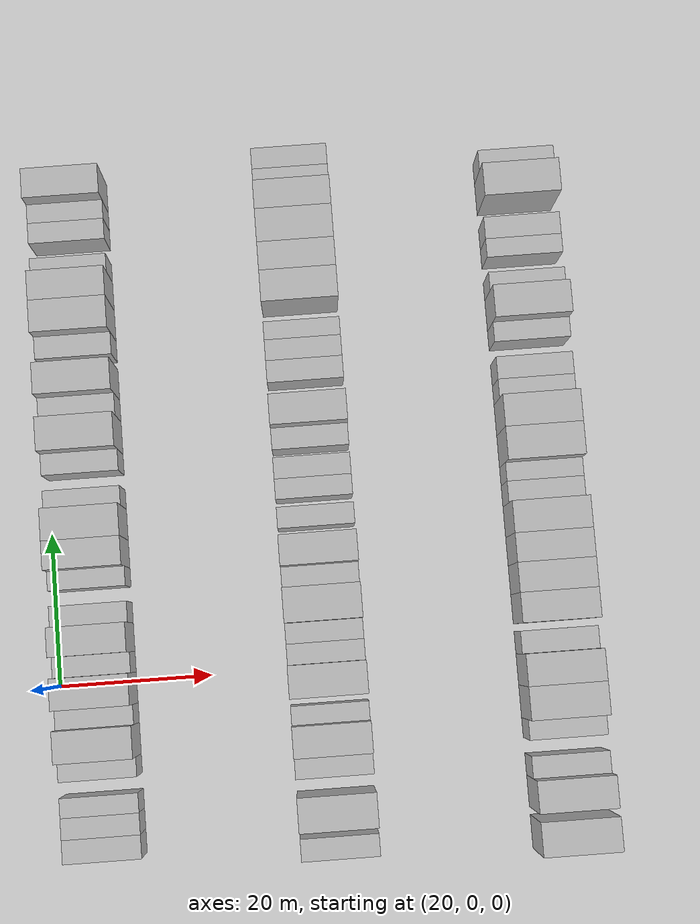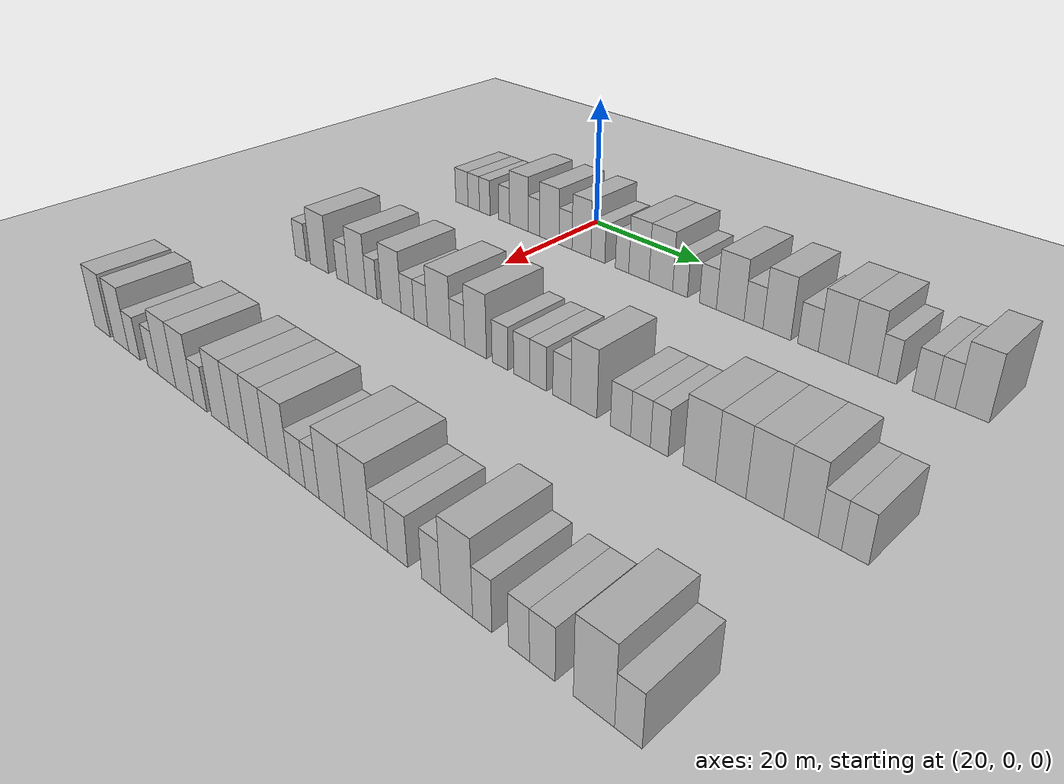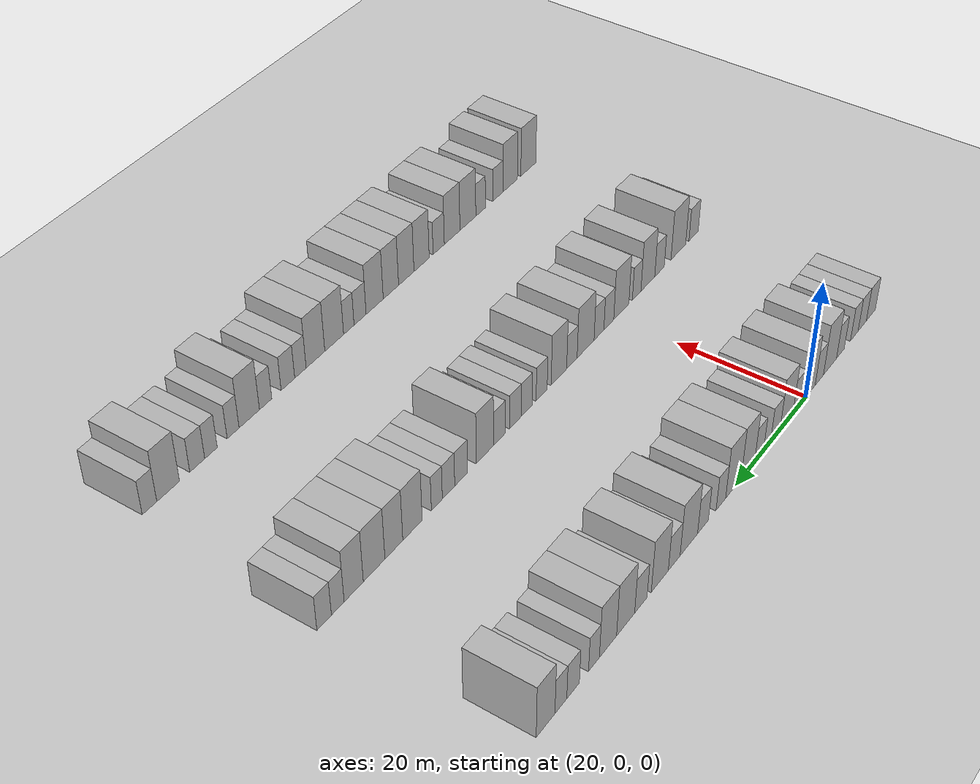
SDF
<sdf version="1.6">
 <world name="default">
  <include><name>ground_plane_1</name><uri>model://HANNAS_ground_plane</uri></include>
  <model name="building_111">
   <static>1</static>
   <pose>25.0000 -20.6103 0 0.000000 0.000000 0.000000</pose>
   <link name="link">
    <pose>0 0 3.00 0 0 0</pose>
    <collision name="collision"><geometry><box><size>10.0000 2.9997 6.0000</size></box></geometry></collision>
    <visual name="visual">
     <cast_shadows>0</cast_shadows>
     <geometry><box><size>10.0000 2.9997 6.0000</size></box></geometry>
     <material>
      <script>
       <uri>model://HANNAS_wall/materials/scripts</uri>
       <uri>model://HANNAS_wall/materials/textures</uri>
       <name>vrc/HANNAS_wall</name>
      </script>
     </material>
    </visual>
   </link>
  </model>
  <model name="building_112">
   <static>1</static>
   <pose>25.0000 -17.7527 0 0.000000 0.000000 0.000000</pose>
   <link name="link">
    <pose>0 0 3.00 0 0 0</pose>
    <collision name="collision"><geometry><box><size>10.0000 2.7156 6.0000</size></box></geometry></collision>
    <visual name="visual">
     <cast_shadows>0</cast_shadows>
     <geometry><box><size>10.0000 2.7156 6.0000</size></box></geometry>
     <material>
      <script>
       <uri>model://HANNAS_wall/materials/scripts</uri>
       <uri>model://HANNAS_wall/materials/textures</uri>
       <name>vrc/HANNAS_wall</name>
      </script>
     </material>
    </visual>
   </link>
  </model>
  <model name="building_113">
   <static>1</static>
   <pose>25.0000 -15.1498 0 0.000000 0.000000 0.000000</pose>
   <link name="link">
    <pose>0 0 3.00 0 0 0</pose>
    <collision name="collision"><geometry><box><size>10.0000 2.4902 6.0000</size></box></geometry></collision>
    <visual name="visual">
     <cast_shadows>0</cast_shadows>
     <geometry><box><size>10.0000 2.4902 6.0000</size></box></geometry>
     <material>
      <script>
       <uri>model://HANNAS_wall/materials/scripts</uri>
       <uri>model://HANNAS_wall/materials/textures</uri>
       <name>vrc/HANNAS_wall</name>
      </script>
     </material>
    </visual>
   </link>
  </model>
  <model name="building_114">
   <static>1</static>
   <pose>25.0000 -10.6758 0 0.000000 0.000000 0.000000</pose>
   <link name="link">
    <pose>0 0 3.00 0 0 0</pose>
    <collision name="collision"><geometry><box><size>10.0000 2.4577 6.0000</size></box></geometry></collision>
    <visual name="visual">
     <cast_shadows>0</cast_shadows>
     <geometry><box><size>10.0000 2.4577 6.0000</size></box></geometry>
     <material>
      <script>
       <uri>model://HANNAS_wall/materials/scripts</uri>
       <uri>model://HANNAS_wall/materials/textures</uri>
       <name>vrc/HANNAS_wall</name>
      </script>
     </material>
    </visual>
   </link>
  </model>
  <model name="building_115">
   <static>1</static>
   <pose>25.0000 -7.4059 0 0.000000 0.000000 0.000000</pose>
   <link name="link">
    <pose>0 0 4.50 0 0 0</pose>
    <collision name="collision"><geometry><box><size>10.0000 4.0821 9.0000</size></box></geometry></collision>
    <visual name="visual">
     <cast_shadows>0</cast_shadows>
     <geometry><box><size>10.0000 4.0821 9.0000</size></box></geometry>
     <material>
      <script>
       <uri>model://HANNAS_wall/materials/scripts</uri>
       <uri>model://HANNAS_wall/materials/textures</uri>
       <name>vrc/HANNAS_wall</name>
      </script>
     </material>
    </visual>
   </link>
  </model>
  <model name="building_116">
   <static>1</static>
   <pose>25.0000 -4.0964 0 0.000000 0.000000 0.000000</pose>
   <link name="link">
    <pose>0 0 3.00 0 0 0</pose>
    <collision name="collision"><geometry><box><size>10.0000 2.5369 6.0000</size></box></geometry></collision>
    <visual name="visual">
     <cast_shadows>0</cast_shadows>
     <geometry><box><size>10.0000 2.5369 6.0000</size></box></geometry>
     <material>
      <script>
       <uri>model://HANNAS_wall/materials/scripts</uri>
       <uri>model://HANNAS_wall/materials/textures</uri>
       <name>vrc/HANNAS_wall</name>
      </script>
     </material>
    </visual>
   </link>
  </model>
  <model name="building_117">
   <static>1</static>
   <pose>25.0000 -0.8176 0 0.000000 0.000000 0.000000</pose>
   <link name="link">
    <pose>0 0 4.50 0 0 0</pose>
    <collision name="collision"><geometry><box><size>10.0000 4.0207 9.0000</size></box></geometry></collision>
    <visual name="visual">
     <cast_shadows>0</cast_shadows>
     <geometry><box><size>10.0000 4.0207 9.0000</size></box></geometry>
     <material>
      <script>
       <uri>model://HANNAS_wall/materials/scripts</uri>
       <uri>model://HANNAS_wall/materials/textures</uri>
       <name>vrc/HANNAS_wall</name>
      </script>
     </material>
    </visual>
   </link>
  </model>
  <model name="building_118">
   <static>1</static>
   <pose>25.0000 2.5289 0 0.000000 0.000000 0.000000</pose>
   <link name="link">
    <pose>0 0 3.00 0 0 0</pose>
    <collision name="collision"><geometry><box><size>10.0000 2.6723 6.0000</size></box></geometry></collision>
    <visual name="visual">
     <cast_shadows>0</cast_shadows>
     <geometry><box><size>10.0000 2.6723 6.0000</size></box></geometry>
     <material>
      <script>
       <uri>model://HANNAS_wall/materials/scripts</uri>
       <uri>model://HANNAS_wall/materials/textures</uri>
       <name>vrc/HANNAS_wall</name>
      </script>
     </material>
    </visual>
   </link>
  </model>
  <model name="building_119">
   <static>1</static>
   <pose>25.0000 5.7479 0 0.000000 0.000000 0.000000</pose>
   <link name="link">
    <pose>0 0 4.50 0 0 0</pose>
    <collision name="collision"><geometry><box><size>10.0000 3.7658 9.0000</size></box></geometry></collision>
    <visual name="visual">
     <cast_shadows>0</cast_shadows>
     <geometry><box><size>10.0000 3.7658 9.0000</size></box></geometry>
     <material>
      <script>
       <uri>model://HANNAS_wall/materials/scripts</uri>
       <uri>model://HANNAS_wall/materials/textures</uri>
       <name>vrc/HANNAS_wall</name>
      </script>
     </material>
    </visual>
   </link>
  </model>
  <model name="building_120">
   <static>1</static>
   <pose>25.0000 8.9909 0 0.000000 0.000000 0.000000</pose>
   <link name="link">
    <pose>0 0 3.00 0 0 0</pose>
    <collision name="collision"><geometry><box><size>10.0000 2.7201 6.0000</size></box></geometry></collision>
    <visual name="visual">
     <cast_shadows>0</cast_shadows>
     <geometry><box><size>10.0000 2.7201 6.0000</size></box></geometry>
     <material>
      <script>
       <uri>model://HANNAS_wall/materials/scripts</uri>
       <uri>model://HANNAS_wall/materials/textures</uri>
       <name>vrc/HANNAS_wall</name>
      </script>
     </material>
    </visual>
   </link>
  </model>
  <model name="building_121">
   <static>1</static>
   <pose>25.0000 13.6086 0 0.000000 0.000000 0.000000</pose>
   <link name="link">
    <pose>0 0 3.00 0 0 0</pose>
    <collision name="collision"><geometry><box><size>10.0000 2.5153 6.0000</size></box></geometry></collision>
    <visual name="visual">
     <cast_shadows>0</cast_shadows>
     <geometry><box><size>10.0000 2.5153 6.0000</size></box></geometry>
     <material>
      <script>
       <uri>model://HANNAS_wall/materials/scripts</uri>
       <uri>model://HANNAS_wall/materials/textures</uri>
       <name>vrc/HANNAS_wall</name>
      </script>
     </material>
    </visual>
   </link>
  </model>
  <model name="building_122">
   <static>1</static>
   <pose>25.0000 16.7250 0 0.000000 0.000000 0.000000</pose>
   <link name="link">
    <pose>0 0 4.50 0 0 0</pose>
    <collision name="collision"><geometry><box><size>10.0000 3.7175 9.0000</size></box></geometry></collision>
    <visual name="visual">
     <cast_shadows>0</cast_shadows>
     <geometry><box><size>10.0000 3.7175 9.0000</size></box></geometry>
     <material>
      <script>
       <uri>model://HANNAS_wall/materials/scripts</uri>
       <uri>model://HANNAS_wall/materials/textures</uri>
       <name>vrc/HANNAS_wall</name>
      </script>
     </material>
    </visual>
   </link>
  </model>
  <model name="building_123">
   <static>1</static>
   <pose>25.0000 20.6630 0 0.000000 0.000000 0.000000</pose>
   <link name="link">
    <pose>0 0 4.50 0 0 0</pose>
    <collision name="collision"><geometry><box><size>10.0000 4.1586 9.0000</size></box></geometry></collision>
    <visual name="visual">
     <cast_shadows>0</cast_shadows>
     <geometry><box><size>10.0000 4.1586 9.0000</size></box></geometry>
     <material>
      <script>
       <uri>model://HANNAS_wall/materials/scripts</uri>
       <uri>model://HANNAS_wall/materials/textures</uri>
       <name>vrc/HANNAS_wall</name>
      </script>
     </material>
    </visual>
   </link>
  </model>
  <model name="building_124">
   <static>1</static>
   <pose>25.0000 24.0163 0 0.000000 0.000000 0.000000</pose>
   <link name="link">
    <pose>0 0 3.00 0 0 0</pose>
    <collision name="collision"><geometry><box><size>10.0000 2.5480 6.0000</size></box></geometry></collision>
    <visual name="visual">
     <cast_shadows>0</cast_shadows>
     <geometry><box><size>10.0000 2.5480 6.0000</size></box></geometry>
     <material>
      <script>
       <uri>model://HANNAS_wall/materials/scripts</uri>
       <uri>model://HANNAS_wall/materials/textures</uri>
       <name>vrc/HANNAS_wall</name>
      </script>
     </material>
    </visual>
   </link>
  </model>
  <model name="building_125">
   <static>1</static>
   <pose>25.0000 28.6931 0 0.000000 0.000000 0.000000</pose>
   <link name="link">
    <pose>0 0 3.00 0 0 0</pose>
    <collision name="collision"><geometry><box><size>10.0000 2.8056 6.0000</size></box></geometry></collision>
    <visual name="visual">
     <cast_shadows>0</cast_shadows>
     <geometry><box><size>10.0000 2.8056 6.0000</size></box></geometry>
     <material>
      <script>
       <uri>model://HANNAS_wall/materials/scripts</uri>
       <uri>model://HANNAS_wall/materials/textures</uri>
       <name>vrc/HANNAS_wall</name>
      </script>
     </material>
    </visual>
   </link>
  </model>
  <model name="building_126">
   <static>1</static>
   <pose>25.0000 32.3089 0 0.000000 0.000000 0.000000</pose>
   <link name="link">
    <pose>0 0 4.50 0 0 0</pose>
    <collision name="collision"><geometry><box><size>10.0000 4.4259 9.0000</size></box></geometry></collision>
    <visual name="visual">
     <cast_shadows>0</cast_shadows>
     <geometry><box><size>10.0000 4.4259 9.0000</size></box></geometry>
     <material>
      <script>
       <uri>model://HANNAS_wall/materials/scripts</uri>
       <uri>model://HANNAS_wall/materials/textures</uri>
       <name>vrc/HANNAS_wall</name>
      </script>
     </material>
    </visual>
   </link>
  </model>
  <model name="building_127">
   <static>1</static>
   <pose>25.0000 35.9844 0 0.000000 0.000000 0.000000</pose>
   <link name="link">
    <pose>0 0 3.00 0 0 0</pose>
    <collision name="collision"><geometry><box><size>10.0000 2.9252 6.0000</size></box></geometry></collision>
    <visual name="visual">
     <cast_shadows>0</cast_shadows>
     <geometry><box><size>10.0000 2.9252 6.0000</size></box></geometry>
     <material>
      <script>
       <uri>model://HANNAS_wall/materials/scripts</uri>
       <uri>model://HANNAS_wall/materials/textures</uri>
       <name>vrc/HANNAS_wall</name>
      </script>
     </material>
    </visual>
   </link>
  </model>
  <model name="building_128">
   <static>1</static>
   <pose>25.0000 39.5188 0 0.000000 0.000000 0.000000</pose>
   <link name="link">
    <pose>0 0 4.50 0 0 0</pose>
    <collision name="collision"><geometry><box><size>10.0000 4.1435 9.0000</size></box></geometry></collision>
    <visual name="visual">
     <cast_shadows>0</cast_shadows>
     <geometry><box><size>10.0000 4.1435 9.0000</size></box></geometry>
     <material>
      <script>
       <uri>model://HANNAS_wall/materials/scripts</uri>
       <uri>model://HANNAS_wall/materials/textures</uri>
       <name>vrc/HANNAS_wall</name>
      </script>
     </material>
    </visual>
   </link>
  </model>
  <model name="building_129">
   <static>1</static>
   <pose>25.0000 44.0666 0 0.000000 0.000000 0.000000</pose>
   <link name="link">
    <pose>0 0 3.00 0 0 0</pose>
    <collision name="collision"><geometry><box><size>10.0000 2.9522 6.0000</size></box></geometry></collision>
    <visual name="visual">
     <cast_shadows>0</cast_shadows>
     <geometry><box><size>10.0000 2.9522 6.0000</size></box></geometry>
     <material>
      <script>
       <uri>model://HANNAS_wall/materials/scripts</uri>
       <uri>model://HANNAS_wall/materials/textures</uri>
       <name>vrc/HANNAS_wall</name>
      </script>
     </material>
    </visual>
   </link>
  </model>
  <model name="building_130">
   <static>1</static>
   <pose>25.0000 47.6422 0 0.000000 0.000000 0.000000</pose>
   <link name="link">
    <pose>0 0 4.50 0 0 0</pose>
    <collision name="collision"><geometry><box><size>10.0000 4.1989 9.0000</size></box></geometry></collision>
    <visual name="visual">
     <cast_shadows>0</cast_shadows>
     <geometry><box><size>10.0000 4.1989 9.0000</size></box></geometry>
     <material>
      <script>
       <uri>model://HANNAS_wall/materials/scripts</uri>
       <uri>model://HANNAS_wall/materials/textures</uri>
       <name>vrc/HANNAS_wall</name>
      </script>
     </material>
    </visual>
   </link>
  </model>
  <model name="building_131">
   <static>1</static>
   <pose>25.0000 51.6867 0 0.000000 0.000000 0.000000</pose>
   <link name="link">
    <pose>0 0 4.50 0 0 0</pose>
    <collision name="collision"><geometry><box><size>10.0000 3.8899 9.0000</size></box></geometry></collision>
    <visual name="visual">
     <cast_shadows>0</cast_shadows>
     <geometry><box><size>10.0000 3.8899 9.0000</size></box></geometry>
     <material>
      <script>
       <uri>model://HANNAS_wall/materials/scripts</uri>
       <uri>model://HANNAS_wall/materials/textures</uri>
       <name>vrc/HANNAS_wall</name>
      </script>
     </material>
    </visual>
   </link>
  </model>
  <model name="building_132">
   <static>1</static>
   <pose>25.0000 54.8414 0 0.000000 0.000000 0.000000</pose>
   <link name="link">
    <pose>0 0 3.00 0 0 0</pose>
    <collision name="collision"><geometry><box><size>10.0000 2.4197 6.0000</size></box></geometry></collision>
    <visual name="visual">
     <cast_shadows>0</cast_shadows>
     <geometry><box><size>10.0000 2.4197 6.0000</size></box></geometry>
     <material>
      <script>
       <uri>model://HANNAS_wall/materials/scripts</uri>
       <uri>model://HANNAS_wall/materials/textures</uri>
       <name>vrc/HANNAS_wall</name>
      </script>
     </material>
    </visual>
   </link>
  </model>
  <model name="building_133">
   <static>1</static>
   <pose>25.0000 59.4169 0 0.000000 0.000000 0.000000</pose>
   <link name="link">
    <pose>0 0 3.00 0 0 0</pose>
    <collision name="collision"><geometry><box><size>10.0000 2.7312 6.0000</size></box></geometry></collision>
    <visual name="visual">
     <cast_shadows>0</cast_shadows>
     <geometry><box><size>10.0000 2.7312 6.0000</size></box></geometry>
     <material>
      <script>
       <uri>model://HANNAS_wall/materials/scripts</uri>
       <uri>model://HANNAS_wall/materials/textures</uri>
       <name>vrc/HANNAS_wall</name>
      </script>
     </material>
    </visual>
   </link>
  </model>
  <model name="building_134">
   <static>1</static>
   <pose>25.0000 62.0471 0 0.000000 0.000000 0.000000</pose>
   <link name="link">
    <pose>0 0 3.00 0 0 0</pose>
    <collision name="collision"><geometry><box><size>10.0000 2.5291 6.0000</size></box></geometry></collision>
    <visual name="visual">
     <cast_shadows>0</cast_shadows>
     <geometry><box><size>10.0000 2.5291 6.0000</size></box></geometry>
     <material>
      <script>
       <uri>model://HANNAS_wall/materials/scripts</uri>
       <uri>model://HANNAS_wall/materials/textures</uri>
       <name>vrc/HANNAS_wall</name>
      </script>
     </material>
    </visual>
   </link>
  </model>
  <model name="building_135">
   <static>1</static>
   <pose>25.0000 65.2681 0 0.000000 0.000000 0.000000</pose>
   <link name="link">
    <pose>0 0 4.50 0 0 0</pose>
    <collision name="collision"><geometry><box><size>10.0000 3.9130 9.0000</size></box></geometry></collision>
    <visual name="visual">
     <cast_shadows>0</cast_shadows>
     <geometry><box><size>10.0000 3.9130 9.0000</size></box></geometry>
     <material>
      <script>
       <uri>model://HANNAS_wall/materials/scripts</uri>
       <uri>model://HANNAS_wall/materials/textures</uri>
       <name>vrc/HANNAS_wall</name>
      </script>
     </material>
    </visual>
   </link>
  </model>
  <model name="building_351">
   <static>1</static>
   <pose>55.0000 -22.5937 0 0.000000 0.000000 0.000000</pose>
   <link name="link">
    <pose>0 0 3.00 0 0 0</pose>
    <collision name="collision"><geometry><box><size>10.0000 2.8374 6.0000</size></box></geometry></collision>
    <visual name="visual">
     <cast_shadows>0</cast_shadows>
     <geometry><box><size>10.0000 2.8374 6.0000</size></box></geometry>
     <material>
      <script>
       <uri>model://HANNAS_wall/materials/scripts</uri>
       <uri>model://HANNAS_wall/materials/textures</uri>
       <name>vrc/HANNAS_wall</name>
      </script>
     </material>
    </visual>
   </link>
  </model>
  <model name="building_352">
   <static>1</static>
   <pose>55.0000 -17.9702 0 0.000000 0.000000 0.000000</pose>
   <link name="link">
    <pose>0 0 4.50 0 0 0</pose>
    <collision name="collision"><geometry><box><size>10.0000 4.4096 9.0000</size></box></geometry></collision>
    <visual name="visual">
     <cast_shadows>0</cast_shadows>
     <geometry><box><size>10.0000 4.4096 9.0000</size></box></geometry>
     <material>
      <script>
       <uri>model://HANNAS_wall/materials/scripts</uri>
       <uri>model://HANNAS_wall/materials/textures</uri>
       <name>vrc/HANNAS_wall</name>
      </script>
     </material>
    </visual>
   </link>
  </model>
  <model name="building_353">
   <static>1</static>
   <pose>55.0000 -12.3756 0 0.000000 0.000000 0.000000</pose>
   <link name="link">
    <pose>0 0 3.00 0 0 0</pose>
    <collision name="collision"><geometry><box><size>10.0000 2.7796 6.0000</size></box></geometry></collision>
    <visual name="visual">
     <cast_shadows>0</cast_shadows>
     <geometry><box><size>10.0000 2.7796 6.0000</size></box></geometry>
     <material>
      <script>
       <uri>model://HANNAS_wall/materials/scripts</uri>
       <uri>model://HANNAS_wall/materials/textures</uri>
       <name>vrc/HANNAS_wall</name>
      </script>
     </material>
    </visual>
   </link>
  </model>
  <model name="building_354">
   <static>1</static>
   <pose>55.0000 -8.9920 0 0.000000 0.000000 0.000000</pose>
   <link name="link">
    <pose>0 0 4.50 0 0 0</pose>
    <collision name="collision"><geometry><box><size>10.0000 3.9876 9.0000</size></box></geometry></collision>
    <visual name="visual">
     <cast_shadows>0</cast_shadows>
     <geometry><box><size>10.0000 3.9876 9.0000</size></box></geometry>
     <material>
      <script>
       <uri>model://HANNAS_wall/materials/scripts</uri>
       <uri>model://HANNAS_wall/materials/textures</uri>
       <name>vrc/HANNAS_wall</name>
      </script>
     </material>
    </visual>
   </link>
  </model>
  <model name="building_355">
   <static>1</static>
   <pose>55.0000 -5.7828 0 0.000000 0.000000 0.000000</pose>
   <link name="link">
    <pose>0 0 3.00 0 0 0</pose>
    <collision name="collision"><geometry><box><size>10.0000 2.4306 6.0000</size></box></geometry></collision>
    <visual name="visual">
     <cast_shadows>0</cast_shadows>
     <geometry><box><size>10.0000 2.4306 6.0000</size></box></geometry>
     <material>
      <script>
       <uri>model://HANNAS_wall/materials/scripts</uri>
       <uri>model://HANNAS_wall/materials/textures</uri>
       <name>vrc/HANNAS_wall</name>
      </script>
     </material>
    </visual>
   </link>
  </model>
  <model name="building_356">
   <static>1</static>
   <pose>55.0000 -1.4709 0 0.000000 0.000000 0.000000</pose>
   <link name="link">
    <pose>0 0 4.50 0 0 0</pose>
    <collision name="collision"><geometry><box><size>10.0000 4.1933 9.0000</size></box></geometry></collision>
    <visual name="visual">
     <cast_shadows>0</cast_shadows>
     <geometry><box><size>10.0000 4.1933 9.0000</size></box></geometry>
     <material>
      <script>
       <uri>model://HANNAS_wall/materials/scripts</uri>
       <uri>model://HANNAS_wall/materials/textures</uri>
       <name>vrc/HANNAS_wall</name>
      </script>
     </material>
    </visual>
   </link>
  </model>
  <model name="building_357">
   <static>1</static>
   <pose>55.0000 1.9734 0 0.000000 0.000000 0.000000</pose>
   <link name="link">
    <pose>0 0 3.00 0 0 0</pose>
    <collision name="collision"><geometry><box><size>10.0000 2.6951 6.0000</size></box></geometry></collision>
    <visual name="visual">
     <cast_shadows>0</cast_shadows>
     <geometry><box><size>10.0000 2.6951 6.0000</size></box></geometry>
     <material>
      <script>
       <uri>model://HANNAS_wall/materials/scripts</uri>
       <uri>model://HANNAS_wall/materials/textures</uri>
       <name>vrc/HANNAS_wall</name>
      </script>
     </material>
    </visual>
   </link>
  </model>
  <model name="building_358">
   <static>1</static>
   <pose>55.0000 4.6484 0 0.000000 0.000000 0.000000</pose>
   <link name="link">
    <pose>0 0 3.00 0 0 0</pose>
    <collision name="collision"><geometry><box><size>10.0000 2.6549 6.0000</size></box></geometry></collision>
    <visual name="visual">
     <cast_shadows>0</cast_shadows>
     <geometry><box><size>10.0000 2.6549 6.0000</size></box></geometry>
     <material>
      <script>
       <uri>model://HANNAS_wall/materials/scripts</uri>
       <uri>model://HANNAS_wall/materials/textures</uri>
       <name>vrc/HANNAS_wall</name>
      </script>
     </material>
    </visual>
   </link>
  </model>
  <model name="building_359">
   <static>1</static>
   <pose>55.0000 8.2243 0 0.000000 0.000000 0.000000</pose>
   <link name="link">
    <pose>0 0 4.50 0 0 0</pose>
    <collision name="collision"><geometry><box><size>10.0000 4.4969 9.0000</size></box></geometry></collision>
    <visual name="visual">
     <cast_shadows>0</cast_shadows>
     <geometry><box><size>10.0000 4.4969 9.0000</size></box></geometry>
     <material>
      <script>
       <uri>model://HANNAS_wall/materials/scripts</uri>
       <uri>model://HANNAS_wall/materials/textures</uri>
       <name>vrc/HANNAS_wall</name>
      </script>
     </material>
    </visual>
   </link>
  </model>
  <model name="building_360">
   <static>1</static>
   <pose>55.0000 11.8341 0 0.000000 0.000000 0.000000</pose>
   <link name="link">
    <pose>0 0 3.00 0 0 0</pose>
    <collision name="collision"><geometry><box><size>10.0000 2.7228 6.0000</size></box></geometry></collision>
    <visual name="visual">
     <cast_shadows>0</cast_shadows>
     <geometry><box><size>10.0000 2.7228 6.0000</size></box></geometry>
     <material>
      <script>
       <uri>model://HANNAS_wall/materials/scripts</uri>
       <uri>model://HANNAS_wall/materials/textures</uri>
       <name>vrc/HANNAS_wall</name>
      </script>
     </material>
    </visual>
   </link>
  </model>
  <model name="building_361">
   <static>1</static>
   <pose>55.0000 15.1858 0 0.000000 0.000000 0.000000</pose>
   <link name="link">
    <pose>0 0 4.50 0 0 0</pose>
    <collision name="collision"><geometry><box><size>10.0000 3.9806 9.0000</size></box></geometry></collision>
    <visual name="visual">
     <cast_shadows>0</cast_shadows>
     <geometry><box><size>10.0000 3.9806 9.0000</size></box></geometry>
     <material>
      <script>
       <uri>model://HANNAS_wall/materials/scripts</uri>
       <uri>model://HANNAS_wall/materials/textures</uri>
       <name>vrc/HANNAS_wall</name>
      </script>
     </material>
    </visual>
   </link>
  </model>
  <model name="building_362">
   <static>1</static>
   <pose>55.0000 19.5597 0 0.000000 0.000000 0.000000</pose>
   <link name="link">
    <pose>0 0 3.00 0 0 0</pose>
    <collision name="collision"><geometry><box><size>10.0000 2.7673 6.0000</size></box></geometry></collision>
    <visual name="visual">
     <cast_shadows>0</cast_shadows>
     <geometry><box><size>10.0000 2.7673 6.0000</size></box></geometry>
     <material>
      <script>
       <uri>model://HANNAS_wall/materials/scripts</uri>
       <uri>model://HANNAS_wall/materials/textures</uri>
       <name>vrc/HANNAS_wall</name>
      </script>
     </material>
    </visual>
   </link>
  </model>
  <model name="building_363">
   <static>1</static>
   <pose>55.0000 23.2791 0 0.000000 0.000000 0.000000</pose>
   <link name="link">
    <pose>0 0 3.00 0 0 0</pose>
    <collision name="collision"><geometry><box><size>10.0000 2.6715 6.0000</size></box></geometry></collision>
    <visual name="visual">
     <cast_shadows>0</cast_shadows>
     <geometry><box><size>10.0000 2.6715 6.0000</size></box></geometry>
     <material>
      <script>
       <uri>model://HANNAS_wall/materials/scripts</uri>
       <uri>model://HANNAS_wall/materials/textures</uri>
       <name>vrc/HANNAS_wall</name>
      </script>
     </material>
    </visual>
   </link>
  </model>
  <model name="building_364">
   <static>1</static>
   <pose>55.0000 26.0213 0 0.000000 0.000000 0.000000</pose>
   <link name="link">
    <pose>0 0 3.00 0 0 0</pose>
    <collision name="collision"><geometry><box><size>10.0000 2.8129 6.0000</size></box></geometry></collision>
    <visual name="visual">
     <cast_shadows>0</cast_shadows>
     <geometry><box><size>10.0000 2.8129 6.0000</size></box></geometry>
     <material>
      <script>
       <uri>model://HANNAS_wall/materials/scripts</uri>
       <uri>model://HANNAS_wall/materials/textures</uri>
       <name>vrc/HANNAS_wall</name>
      </script>
     </material>
    </visual>
   </link>
  </model>
  <model name="building_365">
   <static>1</static>
   <pose>55.0000 29.8499 0 0.000000 0.000000 0.000000</pose>
   <link name="link">
    <pose>0 0 3.00 0 0 0</pose>
    <collision name="collision"><geometry><box><size>10.0000 2.8444 6.0000</size></box></geometry></collision>
    <visual name="visual">
     <cast_shadows>0</cast_shadows>
     <geometry><box><size>10.0000 2.8444 6.0000</size></box></geometry>
     <material>
      <script>
       <uri>model://HANNAS_wall/materials/scripts</uri>
       <uri>model://HANNAS_wall/materials/textures</uri>
       <name>vrc/HANNAS_wall</name>
      </script>
     </material>
    </visual>
   </link>
  </model>
  <model name="building_366">
   <static>1</static>
   <pose>55.0000 33.2671 0 0.000000 0.000000 0.000000</pose>
   <link name="link">
    <pose>0 0 4.50 0 0 0</pose>
    <collision name="collision"><geometry><box><size>10.0000 3.9901 9.0000</size></box></geometry></collision>
    <visual name="visual">
     <cast_shadows>0</cast_shadows>
     <geometry><box><size>10.0000 3.9901 9.0000</size></box></geometry>
     <material>
      <script>
       <uri>model://HANNAS_wall/materials/scripts</uri>
       <uri>model://HANNAS_wall/materials/textures</uri>
       <name>vrc/HANNAS_wall</name>
      </script>
     </material>
    </visual>
   </link>
  </model>
  <model name="building_367">
   <static>1</static>
   <pose>55.0000 38.7201 0 0.000000 0.000000 0.000000</pose>
   <link name="link">
    <pose>0 0 3.00 0 0 0</pose>
    <collision name="collision"><geometry><box><size>10.0000 2.9158 6.0000</size></box></geometry></collision>
    <visual name="visual">
     <cast_shadows>0</cast_shadows>
     <geometry><box><size>10.0000 2.9158 6.0000</size></box></geometry>
     <material>
      <script>
       <uri>model://HANNAS_wall/materials/scripts</uri>
       <uri>model://HANNAS_wall/materials/textures</uri>
       <name>vrc/HANNAS_wall</name>
      </script>
     </material>
    </visual>
   </link>
  </model>
  <model name="building_368">
   <static>1</static>
   <pose>55.0000 41.5603 0 0.000000 0.000000 0.000000</pose>
   <link name="link">
    <pose>0 0 3.00 0 0 0</pose>
    <collision name="collision"><geometry><box><size>10.0000 2.7646 6.0000</size></box></geometry></collision>
    <visual name="visual">
     <cast_shadows>0</cast_shadows>
     <geometry><box><size>10.0000 2.7646 6.0000</size></box></geometry>
     <material>
      <script>
       <uri>model://HANNAS_wall/materials/scripts</uri>
       <uri>model://HANNAS_wall/materials/textures</uri>
       <name>vrc/HANNAS_wall</name>
      </script>
     </material>
    </visual>
   </link>
  </model>
  <model name="building_369">
   <static>1</static>
   <pose>55.0000 44.1464 0 0.000000 0.000000 0.000000</pose>
   <link name="link">
    <pose>0 0 3.00 0 0 0</pose>
    <collision name="collision"><geometry><box><size>10.0000 2.4075 6.0000</size></box></geometry></collision>
    <visual name="visual">
     <cast_shadows>0</cast_shadows>
     <geometry><box><size>10.0000 2.4075 6.0000</size></box></geometry>
     <material>
      <script>
       <uri>model://HANNAS_wall/materials/scripts</uri>
       <uri>model://HANNAS_wall/materials/textures</uri>
       <name>vrc/HANNAS_wall</name>
      </script>
     </material>
    </visual>
   </link>
  </model>
  <model name="building_370">
   <static>1</static>
   <pose>55.0000 49.4193 0 0.000000 0.000000 0.000000</pose>
   <link name="link">
    <pose>0 0 4.50 0 0 0</pose>
    <collision name="collision"><geometry><box><size>10.0000 4.1384 9.0000</size></box></geometry></collision>
    <visual name="visual">
     <cast_shadows>0</cast_shadows>
     <geometry><box><size>10.0000 4.1384 9.0000</size></box></geometry>
     <material>
      <script>
       <uri>model://HANNAS_wall/materials/scripts</uri>
       <uri>model://HANNAS_wall/materials/textures</uri>
       <name>vrc/HANNAS_wall</name>
      </script>
     </material>
    </visual>
   </link>
  </model>
  <model name="building_371">
   <static>1</static>
   <pose>55.0000 53.3589 0 0.000000 0.000000 0.000000</pose>
   <link name="link">
    <pose>0 0 4.50 0 0 0</pose>
    <collision name="collision"><geometry><box><size>10.0000 3.7408 9.0000</size></box></geometry></collision>
    <visual name="visual">
     <cast_shadows>0</cast_shadows>
     <geometry><box><size>10.0000 3.7408 9.0000</size></box></geometry>
     <material>
      <script>
       <uri>model://HANNAS_wall/materials/scripts</uri>
       <uri>model://HANNAS_wall/materials/textures</uri>
       <name>vrc/HANNAS_wall</name>
      </script>
     </material>
    </visual>
   </link>
  </model>
  <model name="building_372">
   <static>1</static>
   <pose>55.0000 57.4390 0 0.000000 0.000000 0.000000</pose>
   <link name="link">
    <pose>0 0 4.50 0 0 0</pose>
    <collision name="collision"><geometry><box><size>10.0000 4.4194 9.0000</size></box></geometry></collision>
    <visual name="visual">
     <cast_shadows>0</cast_shadows>
     <geometry><box><size>10.0000 4.4194 9.0000</size></box></geometry>
     <material>
      <script>
       <uri>model://HANNAS_wall/materials/scripts</uri>
       <uri>model://HANNAS_wall/materials/textures</uri>
       <name>vrc/HANNAS_wall</name>
      </script>
     </material>
    </visual>
   </link>
  </model>
  <model name="building_373">
   <static>1</static>
   <pose>55.0000 61.5638 0 0.000000 0.000000 0.000000</pose>
   <link name="link">
    <pose>0 0 4.50 0 0 0</pose>
    <collision name="collision"><geometry><box><size>10.0000 3.8303 9.0000</size></box></geometry></collision>
    <visual name="visual">
     <cast_shadows>0</cast_shadows>
     <geometry><box><size>10.0000 3.8303 9.0000</size></box></geometry>
     <material>
      <script>
       <uri>model://HANNAS_wall/materials/scripts</uri>
       <uri>model://HANNAS_wall/materials/textures</uri>
       <name>vrc/HANNAS_wall</name>
      </script>
     </material>
    </visual>
   </link>
  </model>
  <model name="building_374">
   <static>1</static>
   <pose>55.0000 64.7222 0 0.000000 0.000000 0.000000</pose>
   <link name="link">
    <pose>0 0 3.00 0 0 0</pose>
    <collision name="collision"><geometry><box><size>10.0000 2.4863 6.0000</size></box></geometry></collision>
    <visual name="visual">
     <cast_shadows>0</cast_shadows>
     <geometry><box><size>10.0000 2.4863 6.0000</size></box></geometry>
     <material>
      <script>
       <uri>model://HANNAS_wall/materials/scripts</uri>
       <uri>model://HANNAS_wall/materials/textures</uri>
       <name>vrc/HANNAS_wall</name>
      </script>
     </material>
    </visual>
   </link>
  </model>
  <model name="building_375">
   <static>1</static>
   <pose>55.0000 67.3729 0 0.000000 0.000000 0.000000</pose>
   <link name="link">
    <pose>0 0 3.00 0 0 0</pose>
    <collision name="collision"><geometry><box><size>10.0000 2.8152 6.0000</size></box></geometry></collision>
    <visual name="visual">
     <cast_shadows>0</cast_shadows>
     <geometry><box><size>10.0000 2.8152 6.0000</size></box></geometry>
     <material>
      <script>
       <uri>model://HANNAS_wall/materials/scripts</uri>
       <uri>model://HANNAS_wall/materials/textures</uri>
       <name>vrc/HANNAS_wall</name>
      </script>
     </material>
    </visual>
   </link>
  </model>
  <model name="building_580">
   <static>1</static>
   <pose>85.0000 -23.1302 0 0.000000 0.000000 0.000000</pose>
   <link name="link">
    <pose>0 0 4.50 0 0 0</pose>
    <collision name="collision"><geometry><box><size>10.0000 4.3270 9.0000</size></box></geometry></collision>
    <visual name="visual">
     <cast_shadows>0</cast_shadows>
     <geometry><box><size>10.0000 4.3270 9.0000</size></box></geometry>
     <material>
      <script>
       <uri>model://HANNAS_wall/materials/scripts</uri>
       <uri>model://HANNAS_wall/materials/textures</uri>
       <name>vrc/HANNAS_wall</name>
      </script>
     </material>
    </visual>
   </link>
  </model>
  <model name="building_581">
   <static>1</static>
   <pose>85.0000 -17.9281 0 0.000000 0.000000 0.000000</pose>
   <link name="link">
    <pose>0 0 4.50 0 0 0</pose>
    <collision name="collision"><geometry><box><size>10.0000 4.0773 9.0000</size></box></geometry></collision>
    <visual name="visual">
     <cast_shadows>0</cast_shadows>
     <geometry><box><size>10.0000 4.0773 9.0000</size></box></geometry>
     <material>
      <script>
       <uri>model://HANNAS_wall/materials/scripts</uri>
       <uri>model://HANNAS_wall/materials/textures</uri>
       <name>vrc/HANNAS_wall</name>
      </script>
     </material>
    </visual>
   </link>
  </model>
  <model name="building_582">
   <static>1</static>
   <pose>85.0000 -14.4764 0 0.000000 0.000000 0.000000</pose>
   <link name="link">
    <pose>0 0 3.00 0 0 0</pose>
    <collision name="collision"><geometry><box><size>10.0000 2.8260 6.0000</size></box></geometry></collision>
    <visual name="visual">
     <cast_shadows>0</cast_shadows>
     <geometry><box><size>10.0000 2.8260 6.0000</size></box></geometry>
     <material>
      <script>
       <uri>model://HANNAS_wall/materials/scripts</uri>
       <uri>model://HANNAS_wall/materials/textures</uri>
       <name>vrc/HANNAS_wall</name>
      </script>
     </material>
    </visual>
   </link>
  </model>
  <model name="building_583">
   <static>1</static>
   <pose>85.0000 -9.7641 0 0.000000 0.000000 0.000000</pose>
   <link name="link">
    <pose>0 0 3.00 0 0 0</pose>
    <collision name="collision"><geometry><box><size>10.0000 2.5988 6.0000</size></box></geometry></collision>
    <visual name="visual">
     <cast_shadows>0</cast_shadows>
     <geometry><box><size>10.0000 2.5988 6.0000</size></box></geometry>
     <material>
      <script>
       <uri>model://HANNAS_wall/materials/scripts</uri>
       <uri>model://HANNAS_wall/materials/textures</uri>
       <name>vrc/HANNAS_wall</name>
      </script>
     </material>
    </visual>
   </link>
  </model>
  <model name="building_584">
   <static>1</static>
   <pose>85.0000 -6.3399 0 0.000000 0.000000 0.000000</pose>
   <link name="link">
    <pose>0 0 4.50 0 0 0</pose>
    <collision name="collision"><geometry><box><size>10.0000 4.2496 9.0000</size></box></geometry></collision>
    <visual name="visual">
     <cast_shadows>0</cast_shadows>
     <geometry><box><size>10.0000 4.2496 9.0000</size></box></geometry>
     <material>
      <script>
       <uri>model://HANNAS_wall/materials/scripts</uri>
       <uri>model://HANNAS_wall/materials/textures</uri>
       <name>vrc/HANNAS_wall</name>
      </script>
     </material>
    </visual>
   </link>
  </model>
  <model name="building_585">
   <static>1</static>
   <pose>85.0000 -2.1703 0 0.000000 0.000000 0.000000</pose>
   <link name="link">
    <pose>0 0 4.50 0 0 0</pose>
    <collision name="collision"><geometry><box><size>10.0000 4.0896 9.0000</size></box></geometry></collision>
    <visual name="visual">
     <cast_shadows>0</cast_shadows>
     <geometry><box><size>10.0000 4.0896 9.0000</size></box></geometry>
     <material>
      <script>
       <uri>model://HANNAS_wall/materials/scripts</uri>
       <uri>model://HANNAS_wall/materials/textures</uri>
       <name>vrc/HANNAS_wall</name>
      </script>
     </material>
    </visual>
   </link>
  </model>
  <model name="building_586">
   <static>1</static>
   <pose>85.0000 1.3248 0 0.000000 0.000000 0.000000</pose>
   <link name="link">
    <pose>0 0 3.00 0 0 0</pose>
    <collision name="collision"><geometry><box><size>10.0000 2.9005 6.0000</size></box></geometry></collision>
    <visual name="visual">
     <cast_shadows>0</cast_shadows>
     <geometry><box><size>10.0000 2.9005 6.0000</size></box></geometry>
     <material>
      <script>
       <uri>model://HANNAS_wall/materials/scripts</uri>
       <uri>model://HANNAS_wall/materials/textures</uri>
       <name>vrc/HANNAS_wall</name>
      </script>
     </material>
    </visual>
   </link>
  </model>
  <model name="building_587">
   <static>1</static>
   <pose>85.0000 5.6967 0 0.000000 0.000000 0.000000</pose>
   <link name="link">
    <pose>0 0 4.50 0 0 0</pose>
    <collision name="collision"><geometry><box><size>10.0000 3.8432 9.0000</size></box></geometry></collision>
    <visual name="visual">
     <cast_shadows>0</cast_shadows>
     <geometry><box><size>10.0000 3.8432 9.0000</size></box></geometry>
     <material>
      <script>
       <uri>model://HANNAS_wall/materials/scripts</uri>
       <uri>model://HANNAS_wall/materials/textures</uri>
       <name>vrc/HANNAS_wall</name>
      </script>
     </material>
    </visual>
   </link>
  </model>
  <model name="building_588">
   <static>1</static>
   <pose>85.0000 9.5286 0 0.000000 0.000000 0.000000</pose>
   <link name="link">
    <pose>0 0 4.50 0 0 0</pose>
    <collision name="collision"><geometry><box><size>10.0000 3.8206 9.0000</size></box></geometry></collision>
    <visual name="visual">
     <cast_shadows>0</cast_shadows>
     <geometry><box><size>10.0000 3.8206 9.0000</size></box></geometry>
     <material>
      <script>
       <uri>model://HANNAS_wall/materials/scripts</uri>
       <uri>model://HANNAS_wall/materials/textures</uri>
       <name>vrc/HANNAS_wall</name>
      </script>
     </material>
    </visual>
   </link>
  </model>
  <model name="building_589">
   <static>1</static>
   <pose>85.0000 13.3107 0 0.000000 0.000000 0.000000</pose>
   <link name="link">
    <pose>0 0 4.50 0 0 0</pose>
    <collision name="collision"><geometry><box><size>10.0000 3.7436 9.0000</size></box></geometry></collision>
    <visual name="visual">
     <cast_shadows>0</cast_shadows>
     <geometry><box><size>10.0000 3.7436 9.0000</size></box></geometry>
     <material>
      <script>
       <uri>model://HANNAS_wall/materials/scripts</uri>
       <uri>model://HANNAS_wall/materials/textures</uri>
       <name>vrc/HANNAS_wall</name>
      </script>
     </material>
    </visual>
   </link>
  </model>
  <model name="building_590">
   <static>1</static>
   <pose>85.0000 17.2349 0 0.000000 0.000000 0.000000</pose>
   <link name="link">
    <pose>0 0 4.50 0 0 0</pose>
    <collision name="collision"><geometry><box><size>10.0000 4.1046 9.0000</size></box></geometry></collision>
    <visual name="visual">
     <cast_shadows>0</cast_shadows>
     <geometry><box><size>10.0000 4.1046 9.0000</size></box></geometry>
     <material>
      <script>
       <uri>model://HANNAS_wall/materials/scripts</uri>
       <uri>model://HANNAS_wall/materials/textures</uri>
       <name>vrc/HANNAS_wall</name>
      </script>
     </material>
    </visual>
   </link>
  </model>
  <model name="building_591">
   <static>1</static>
   <pose>85.0000 20.7031 0 0.000000 0.000000 0.000000</pose>
   <link name="link">
    <pose>0 0 3.00 0 0 0</pose>
    <collision name="collision"><geometry><box><size>10.0000 2.8319 6.0000</size></box></geometry></collision>
    <visual name="visual">
     <cast_shadows>0</cast_shadows>
     <geometry><box><size>10.0000 2.8319 6.0000</size></box></geometry>
     <material>
      <script>
       <uri>model://HANNAS_wall/materials/scripts</uri>
       <uri>model://HANNAS_wall/materials/textures</uri>
       <name>vrc/HANNAS_wall</name>
      </script>
     </material>
    </visual>
   </link>
  </model>
  <model name="building_592">
   <static>1</static>
   <pose>85.0000 23.3323 0 0.000000 0.000000 0.000000</pose>
   <link name="link">
    <pose>0 0 3.00 0 0 0</pose>
    <collision name="collision"><geometry><box><size>10.0000 2.4265 6.0000</size></box></geometry></collision>
    <visual name="visual">
     <cast_shadows>0</cast_shadows>
     <geometry><box><size>10.0000 2.4265 6.0000</size></box></geometry>
     <material>
      <script>
       <uri>model://HANNAS_wall/materials/scripts</uri>
       <uri>model://HANNAS_wall/materials/textures</uri>
       <name>vrc/HANNAS_wall</name>
      </script>
     </material>
    </visual>
   </link>
  </model>
  <model name="building_593">
   <static>1</static>
   <pose>85.0000 26.6913 0 0.000000 0.000000 0.000000</pose>
   <link name="link">
    <pose>0 0 4.50 0 0 0</pose>
    <collision name="collision"><geometry><box><size>10.0000 4.2914 9.0000</size></box></geometry></collision>
    <visual name="visual">
     <cast_shadows>0</cast_shadows>
     <geometry><box><size>10.0000 4.2914 9.0000</size></box></geometry>
     <material>
      <script>
       <uri>model://HANNAS_wall/materials/scripts</uri>
       <uri>model://HANNAS_wall/materials/textures</uri>
       <name>vrc/HANNAS_wall</name>
      </script>
     </material>
    </visual>
   </link>
  </model>
  <model name="building_594">
   <static>1</static>
   <pose>85.0000 30.9247 0 0.000000 0.000000 0.000000</pose>
   <link name="link">
    <pose>0 0 4.50 0 0 0</pose>
    <collision name="collision"><geometry><box><size>10.0000 4.1754 9.0000</size></box></geometry></collision>
    <visual name="visual">
     <cast_shadows>0</cast_shadows>
     <geometry><box><size>10.0000 4.1754 9.0000</size></box></geometry>
     <material>
      <script>
       <uri>model://HANNAS_wall/materials/scripts</uri>
       <uri>model://HANNAS_wall/materials/textures</uri>
       <name>vrc/HANNAS_wall</name>
      </script>
     </material>
    </visual>
   </link>
  </model>
  <model name="building_595">
   <static>1</static>
   <pose>85.0000 34.2706 0 0.000000 0.000000 0.000000</pose>
   <link name="link">
    <pose>0 0 3.00 0 0 0</pose>
    <collision name="collision"><geometry><box><size>10.0000 2.5165 6.0000</size></box></geometry></collision>
    <visual name="visual">
     <cast_shadows>0</cast_shadows>
     <geometry><box><size>10.0000 2.5165 6.0000</size></box></geometry>
     <material>
      <script>
       <uri>model://HANNAS_wall/materials/scripts</uri>
       <uri>model://HANNAS_wall/materials/textures</uri>
       <name>vrc/HANNAS_wall</name>
      </script>
     </material>
    </visual>
   </link>
  </model>
  <model name="building_596">
   <static>1</static>
   <pose>85.0000 37.0022 0 0.000000 0.000000 0.000000</pose>
   <link name="link">
    <pose>0 0 3.00 0 0 0</pose>
    <collision name="collision"><geometry><box><size>10.0000 2.9468 6.0000</size></box></geometry></collision>
    <visual name="visual">
     <cast_shadows>0</cast_shadows>
     <geometry><box><size>10.0000 2.9468 6.0000</size></box></geometry>
     <material>
      <script>
       <uri>model://HANNAS_wall/materials/scripts</uri>
       <uri>model://HANNAS_wall/materials/textures</uri>
       <name>vrc/HANNAS_wall</name>
      </script>
     </material>
    </visual>
   </link>
  </model>
  <model name="building_597">
   <static>1</static>
   <pose>85.0000 41.7828 0 0.000000 0.000000 0.000000</pose>
   <link name="link">
    <pose>0 0 3.00 0 0 0</pose>
    <collision name="collision"><geometry><box><size>10.0000 2.6143 6.0000</size></box></geometry></collision>
    <visual name="visual">
     <cast_shadows>0</cast_shadows>
     <geometry><box><size>10.0000 2.6143 6.0000</size></box></geometry>
     <material>
      <script>
       <uri>model://HANNAS_wall/materials/scripts</uri>
       <uri>model://HANNAS_wall/materials/textures</uri>
       <name>vrc/HANNAS_wall</name>
      </script>
     </material>
    </visual>
   </link>
  </model>
  <model name="building_598">
   <static>1</static>
   <pose>85.0000 45.2094 0 0.000000 0.000000 0.000000</pose>
   <link name="link">
    <pose>0 0 4.50 0 0 0</pose>
    <collision name="collision"><geometry><box><size>10.0000 4.2391 9.0000</size></box></geometry></collision>
    <visual name="visual">
     <cast_shadows>0</cast_shadows>
     <geometry><box><size>10.0000 4.2391 9.0000</size></box></geometry>
     <material>
      <script>
       <uri>model://HANNAS_wall/materials/scripts</uri>
       <uri>model://HANNAS_wall/materials/textures</uri>
       <name>vrc/HANNAS_wall</name>
      </script>
     </material>
    </visual>
   </link>
  </model>
  <model name="building_599">
   <static>1</static>
   <pose>85.0000 48.5489 0 0.000000 0.000000 0.000000</pose>
   <link name="link">
    <pose>0 0 3.00 0 0 0</pose>
    <collision name="collision"><geometry><box><size>10.0000 2.4398 6.0000</size></box></geometry></collision>
    <visual name="visual">
     <cast_shadows>0</cast_shadows>
     <geometry><box><size>10.0000 2.4398 6.0000</size></box></geometry>
     <material>
      <script>
       <uri>model://HANNAS_wall/materials/scripts</uri>
       <uri>model://HANNAS_wall/materials/textures</uri>
       <name>vrc/HANNAS_wall</name>
      </script>
     </material>
    </visual>
   </link>
  </model>
  <model name="building_600">
   <static>1</static>
   <pose>85.0000 53.0201 0 0.000000 0.000000 0.000000</pose>
   <link name="link">
    <pose>0 0 3.00 0 0 0</pose>
    <collision name="collision"><geometry><box><size>10.0000 2.5027 6.0000</size></box></geometry></collision>
    <visual name="visual">
     <cast_shadows>0</cast_shadows>
     <geometry><box><size>10.0000 2.5027 6.0000</size></box></geometry>
     <material>
      <script>
       <uri>model://HANNAS_wall/materials/scripts</uri>
       <uri>model://HANNAS_wall/materials/textures</uri>
       <name>vrc/HANNAS_wall</name>
      </script>
     </material>
    </visual>
   </link>
  </model>
  <model name="building_601">
   <static>1</static>
   <pose>85.0000 55.7386 0 0.000000 0.000000 0.000000</pose>
   <link name="link">
    <pose>0 0 3.00 0 0 0</pose>
    <collision name="collision"><geometry><box><size>10.0000 2.9343 6.0000</size></box></geometry></collision>
    <visual name="visual">
     <cast_shadows>0</cast_shadows>
     <geometry><box><size>10.0000 2.9343 6.0000</size></box></geometry>
     <material>
      <script>
       <uri>model://HANNAS_wall/materials/scripts</uri>
       <uri>model://HANNAS_wall/materials/textures</uri>
       <name>vrc/HANNAS_wall</name>
      </script>
     </material>
    </visual>
   </link>
  </model>
  <model name="building_602">
   <static>1</static>
   <pose>85.0000 61.3733 0 0.000000 0.000000 0.000000</pose>
   <link name="link">
    <pose>0 0 4.50 0 0 0</pose>
    <collision name="collision"><geometry><box><size>10.0000 4.3349 9.0000</size></box></geometry></collision>
    <visual name="visual">
     <cast_shadows>0</cast_shadows>
     <geometry><box><size>10.0000 4.3349 9.0000</size></box></geometry>
     <material>
      <script>
       <uri>model://HANNAS_wall/materials/scripts</uri>
       <uri>model://HANNAS_wall/materials/textures</uri>
       <name>vrc/HANNAS_wall</name>
      </script>
     </material>
    </visual>
   </link>
  </model>
  <model name="building_603">
   <static>1</static>
   <pose>85.0000 64.9124 0 0.000000 0.000000 0.000000</pose>
   <link name="link">
    <pose>0 0 3.00 0 0 0</pose>
    <collision name="collision"><geometry><box><size>10.0000 2.7434 6.0000</size></box></geometry></collision>
    <visual name="visual">
     <cast_shadows>0</cast_shadows>
     <geometry><box><size>10.0000 2.7434 6.0000</size></box></geometry>
     <material>
      <script>
       <uri>model://HANNAS_wall/materials/scripts</uri>
       <uri>model://HANNAS_wall/materials/textures</uri>
       <name>vrc/HANNAS_wall</name>
      </script>
     </material>
    </visual>
   </link>
  </model>
 </world>
</sdf>
